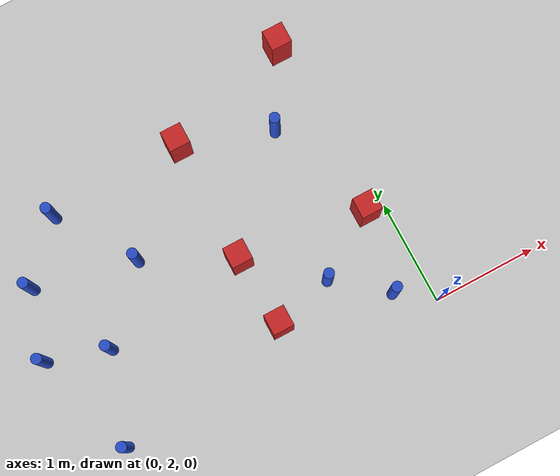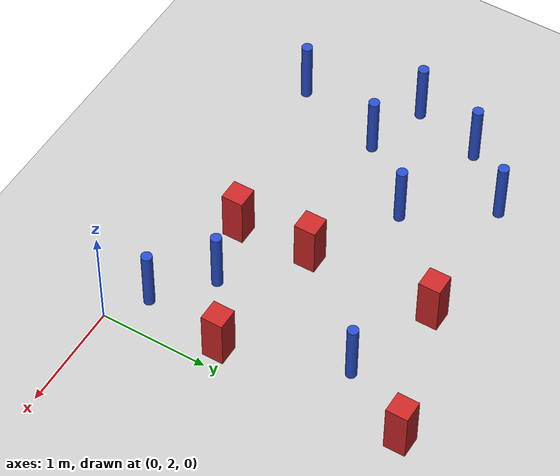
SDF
<sdf version="1.6">
 <world name="default">
  <model name="ground_plane">
   <static>1</static>
   <link name="link">
    <collision name="collision">
     <geometry><plane><normal>0 0 1</normal><size>100 100</size></plane></geometry>
     <surface><friction><ode><mu>100</mu><mu2>50</mu2></ode></friction></surface>
    </collision>
    <visual name="visual">
     <cast_shadows>0</cast_shadows>
     <geometry><plane><normal>0 0 1</normal><size>100 100</size></plane></geometry>
     <material>
      <ambient>1.0 1.0 1.0 1.0</ambient>
      <diffuse>0.8 0.8 0.8 1.0</diffuse>
      <specular>0.01 0.01 0.01 1.000000</specular>
     </material>
    </visual>
   </link>
  </model>
  <model name="square_post_obstacle24">
   <static>true</static>
   <pose>-1.41695079501 3.17292719952 -6.11067671241e-07 -5.50515727128e-06 -8.79689657224e-07 2.37013304536e-05</pose>
   <link name="link">
    <pose>0 0 0.25 0 -0 0</pose>
    <inertial>
     <mass>100</mass>
     <inertia>
      <ixx>0.166667</ixx>
      <ixy>0</ixy>
      <ixz>0</ixz>
      <iyy>0.166667</iyy>
      <iyz>0</iyz>
      <izz>0.166667</izz>
     </inertia>
    </inertial>
    <collision name="collision"><geometry><box><size>.2 .2 .5</size></box></geometry></collision>
    <visual name="visual">
     <geometry><box><size>.2 .2 .5</size></box></geometry>
     <material>
      <script><name>Gazebo/Red</name><uri>file://media/materials/scripts/gazebo.material</uri></script>
     </material>
    </visual>
   </link>
  </model>
  <model name="pole_obstacle38">
   <static>true</static>
   <pose>-0.332241668047 2.24233493727 -9.47619616065e-06 5.49618799738e-07 2.36310414065e-07 -1.55090534798e-07</pose>
   <link name="link">
    <pose>0 0 0.3 0 -0 0</pose>
    <inertial>
     <mass>1</mass>
     <inertia><ixx>0.145833</ixx><ixy>0</ixy><ixz>0</ixz><iyy>0.145833</iyy><iyz>0</iyz><izz>0.125</izz></inertia>
    </inertial>
    <collision name="collision">
     <geometry><cylinder><radius>0.05</radius><length>.6</length></cylinder></geometry>
    </collision>
    <visual name="visual">
     <geometry><cylinder><radius>0.05</radius><length>.6</length></cylinder></geometry>
     <material>
      <script><name>Gazebo/Blue</name><uri>file://media/materials/scripts/gazebo.material</uri></script>
     </material>
    </visual>
   </link>
  </model>
  <model name="square_post_obstacle39">
   <static>true</static>
   <pose>-0.19302434435 3.02307327508 -6.11067671241e-07 -5.50515727128e-06 -8.79689657224e-07 2.37013304536e-05</pose>
   <link name="link">
    <pose>0 0 0.25 0 -0 0</pose>
    <inertial>
     <mass>100</mass>
     <inertia>
      <ixx>0.166667</ixx>
      <ixy>0</ixy>
      <ixz>0</ixz>
      <iyy>0.166667</iyy>
      <iyz>0</iyz>
      <izz>0.166667</izz>
     </inertia>
    </inertial>
    <collision name="collision"><geometry><box><size>.2 .2 .5</size></box></geometry></collision>
    <visual name="visual">
     <geometry><box><size>.2 .2 .5</size></box></geometry>
     <material>
      <script><name>Gazebo/Red</name><uri>file://media/materials/scripts/gazebo.material</uri></script>
     </material>
    </visual>
   </link>
  </model>
  <model name="square_post_obstacle49">
   <static>true</static>
   <pose>-1.41972479286 4.36392042772 -6.11067671241e-07 -5.50515727128e-06 -8.79689657224e-07 2.37013304536e-05</pose>
   <link name="link">
    <pose>0 0 0.25 0 -0 0</pose>
    <inertial>
     <mass>100</mass>
     <inertia>
      <ixx>0.166667</ixx>
      <ixy>0</ixy>
      <ixz>0</ixz>
      <iyy>0.166667</iyy>
      <iyz>0</iyz>
      <izz>0.166667</izz>
     </inertia>
    </inertial>
    <collision name="collision"><geometry><box><size>.2 .2 .5</size></box></geometry></collision>
    <visual name="visual">
     <geometry><box><size>.2 .2 .5</size></box></geometry>
     <material>
      <script><name>Gazebo/Red</name><uri>file://media/materials/scripts/gazebo.material</uri></script>
     </material>
    </visual>
   </link>
  </model>
  <model name="pole_obstacle79">
   <static>true</static>
   <pose>-2.71934926652 4.31471729502 -9.47619616065e-06 5.49618799738e-07 2.3631041406e-07 -1.55090534801e-07</pose>
   <link name="link">
    <pose>0 0 0.3 0 -0 0</pose>
    <inertial>
     <mass>1</mass>
     <inertia><ixx>0.145833</ixx><ixy>0</ixy><ixz>0</ixz><iyy>0.145833</iyy><iyz>0</iyz><izz>0.125</izz></inertia>
    </inertial>
    <collision name="collision">
     <geometry><cylinder><radius>0.05</radius><length>.6</length></cylinder></geometry>
    </collision>
    <visual name="visual">
     <geometry><cylinder><radius>0.05</radius><length>.6</length></cylinder></geometry>
     <material>
      <script><name>Gazebo/Blue</name><uri>file://media/materials/scripts/gazebo.material</uri></script>
     </material>
    </visual>
   </link>
  </model>
  <model name="pole_obstacle83">
   <static>true</static>
   <pose>-2.2327138329 3.59456700948 -9.47619616065e-06 5.49618799737e-07 2.36310414051e-07 -1.55090534807e-07</pose>
   <link name="link">
    <pose>0 0 0.3 0 -0 0</pose>
    <inertial>
     <mass>1</mass>
     <inertia><ixx>0.145833</ixx><ixy>0</ixy><ixz>0</ixz><iyy>0.145833</iyy><iyz>0</iyz><izz>0.125</izz></inertia>
    </inertial>
    <collision name="collision">
     <geometry><cylinder><radius>0.05</radius><length>.6</length></cylinder></geometry>
    </collision>
    <visual name="visual">
     <geometry><cylinder><radius>0.05</radius><length>.6</length></cylinder></geometry>
     <material>
      <script><name>Gazebo/Blue</name><uri>file://media/materials/scripts/gazebo.material</uri></script>
     </material>
    </visual>
   </link>
  </model>
  <model name="pole_obstacle98">
   <static>true</static>
   <pose>-3.38269192491 3.16837766189 -9.47619616065e-06 5.49618799737e-07 2.36310414067e-07 -1.55090534797e-07</pose>
   <link name="link">
    <pose>0 0 0.3 0 -0 0</pose>
    <inertial>
     <mass>1</mass>
     <inertia><ixx>0.145833</ixx><ixy>0</ixy><ixz>0</ixz><iyy>0.145833</iyy><iyz>0</iyz><izz>0.125</izz></inertia>
    </inertial>
    <collision name="collision">
     <geometry><cylinder><radius>0.05</radius><length>.6</length></cylinder></geometry>
    </collision>
    <visual name="visual">
     <geometry><cylinder><radius>0.05</radius><length>.6</length></cylinder></geometry>
     <material>
      <script><name>Gazebo/Blue</name><uri>file://media/materials/scripts/gazebo.material</uri></script>
     </material>
    </visual>
   </link>
  </model>
  <model name="square_post_obstacle99">
   <static>true</static>
   <pose>-1.37548124904 2.48120669292 -6.11067671241e-07 -5.50515727128e-06 -8.79689657224e-07 2.37013304536e-05</pose>
   <link name="link">
    <pose>0 0 0.25 0 -0 0</pose>
    <inertial>
     <mass>100</mass>
     <inertia>
      <ixx>0.166667</ixx>
      <ixy>0</ixy>
      <ixz>0</ixz>
      <iyy>0.166667</iyy>
      <iyz>0</iyz>
      <izz>0.166667</izz>
     </inertia>
    </inertial>
    <collision name="collision"><geometry><box><size>.2 .2 .5</size></box></geometry></collision>
    <visual name="visual">
     <geometry><box><size>.2 .2 .5</size></box></geometry>
     <material>
      <script><name>Gazebo/Red</name><uri>file://media/materials/scripts/gazebo.material</uri></script>
     </material>
    </visual>
   </link>
  </model>
  <model name="pole_obstacle130">
   <static>true</static>
   <pose>-3.07951397155 2.14901054969 -9.47619616065e-06 5.49618799737e-07 2.36310414051e-07 -1.55090534807e-07</pose>
   <link name="link">
    <pose>0 0 0.3 0 -0 0</pose>
    <inertial>
     <mass>1</mass>
     <inertia><ixx>0.145833</ixx><ixy>0</ixy><ixz>0</ixz><iyy>0.145833</iyy><iyz>0</iyz><izz>0.125</izz></inertia>
    </inertial>
    <collision name="collision">
     <geometry><cylinder><radius>0.05</radius><length>.6</length></cylinder></geometry>
    </collision>
    <visual name="visual">
     <geometry><cylinder><radius>0.05</radius><length>.6</length></cylinder></geometry>
     <material>
      <script><name>Gazebo/Blue</name><uri>file://media/materials/scripts/gazebo.material</uri></script>
     </material>
    </visual>
   </link>
  </model>
  <model name="pole_obstacle133">
   <static>true</static>
   <pose>-0.561178136469 4.07933280669 -9.47619616065e-06 5.49618799737e-07 2.36310414065e-07 -1.55090534796e-07</pose>
   <link name="link">
    <pose>0 0 0.3 0 -0 0</pose>
    <inertial>
     <mass>1</mass>
     <inertia><ixx>0.145833</ixx><ixy>0</ixy><ixz>0</ixz><iyy>0.145833</iyy><iyz>0</iyz><izz>0.125</izz></inertia>
    </inertial>
    <collision name="collision">
     <geometry><cylinder><radius>0.05</radius><length>.6</length></cylinder></geometry>
    </collision>
    <visual name="visual">
     <geometry><cylinder><radius>0.05</radius><length>.6</length></cylinder></geometry>
     <material>
      <script><name>Gazebo/Blue</name><uri>file://media/materials/scripts/gazebo.material</uri></script>
     </material>
    </visual>
   </link>
  </model>
  <model name="square_post_obstacle133">
   <static>true</static>
   <pose>-0.177938408902 4.75565873523 -6.11067671241e-07 -5.50515727128e-06 -8.79689657224e-07 2.37013304536e-05</pose>
   <link name="link">
    <pose>0 0 0.25 0 -0 0</pose>
    <inertial>
     <mass>100</mass>
     <inertia>
      <ixx>0.166667</ixx>
      <ixy>0</ixy>
      <ixz>0</ixz>
      <iyy>0.166667</iyy>
      <iyz>0</iyz>
      <izz>0.166667</izz>
     </inertia>
    </inertial>
    <collision name="collision"><geometry><box><size>.2 .2 .5</size></box></geometry></collision>
    <visual name="visual">
     <geometry><box><size>.2 .2 .5</size></box></geometry>
     <material>
      <script><name>Gazebo/Red</name><uri>file://media/materials/scripts/gazebo.material</uri></script>
     </material>
    </visual>
   </link>
  </model>
  <model name="pole_obstacle189">
   <static>true</static>
   <pose>-2.80910351754 2.99186385845 -9.47619616065e-06 5.49618799737e-07 2.36310414051e-07 -1.55090534807e-07</pose>
   <link name="link">
    <pose>0 0 0.3 0 -0 0</pose>
    <inertial>
     <mass>1</mass>
     <inertia><ixx>0.145833</ixx><ixy>0</ixy><ixz>0</ixz><iyy>0.145833</iyy><iyz>0</iyz><izz>0.125</izz></inertia>
    </inertial>
    <collision name="collision">
     <geometry><cylinder><radius>0.05</radius><length>.6</length></cylinder></geometry>
    </collision>
    <visual name="visual">
     <geometry><cylinder><radius>0.05</radius><length>.6</length></cylinder></geometry>
     <material>
      <script><name>Gazebo/Blue</name><uri>file://media/materials/scripts/gazebo.material</uri></script>
     </material>
    </visual>
   </link>
  </model>
  <model name="pole_obstacle212">
   <static>true</static>
   <pose>-3.19096041505 3.81621968908 -9.47619616065e-06 5.49618799737e-07 2.36310414067e-07 -1.55090534797e-07</pose>
   <link name="link">
    <pose>0 0 0.3 0 -0 0</pose>
    <inertial>
     <mass>1</mass>
     <inertia><ixx>0.145833</ixx><ixy>0</ixy><ixz>0</ixz><iyy>0.145833</iyy><iyz>0</iyz><izz>0.125</izz></inertia>
    </inertial>
    <collision name="collision">
     <geometry><cylinder><radius>0.05</radius><length>.6</length></cylinder></geometry>
    </collision>
    <visual name="visual">
     <geometry><cylinder><radius>0.05</radius><length>.6</length></cylinder></geometry>
     <material>
      <script><name>Gazebo/Blue</name><uri>file://media/materials/scripts/gazebo.material</uri></script>
     </material>
    </visual>
   </link>
  </model>
  <model name="pole_obstacle217">
   <static>true</static>
   <pose>-0.798769990611 2.62626002078 -9.4761961606e-06 5.49618799729e-07 2.36310414008e-07 -1.55090534818e-07</pose>
   <link name="link">
    <pose>0 0 0.3 0 -0 0</pose>
    <inertial>
     <mass>1</mass>
     <inertia><ixx>0.145833</ixx><ixy>0</ixy><ixz>0</ixz><iyy>0.145833</iyy><iyz>0</iyz><izz>0.125</izz></inertia>
    </inertial>
    <collision name="collision">
     <geometry><cylinder><radius>0.05</radius><length>.6</length></cylinder></geometry>
    </collision>
    <visual name="visual">
     <geometry><cylinder><radius>0.05</radius><length>.6</length></cylinder></geometry>
     <material>
      <script><name>Gazebo/Blue</name><uri>file://media/materials/scripts/gazebo.material</uri></script>
     </material>
    </visual>
   </link>
  </model>
 </world>
</sdf>
